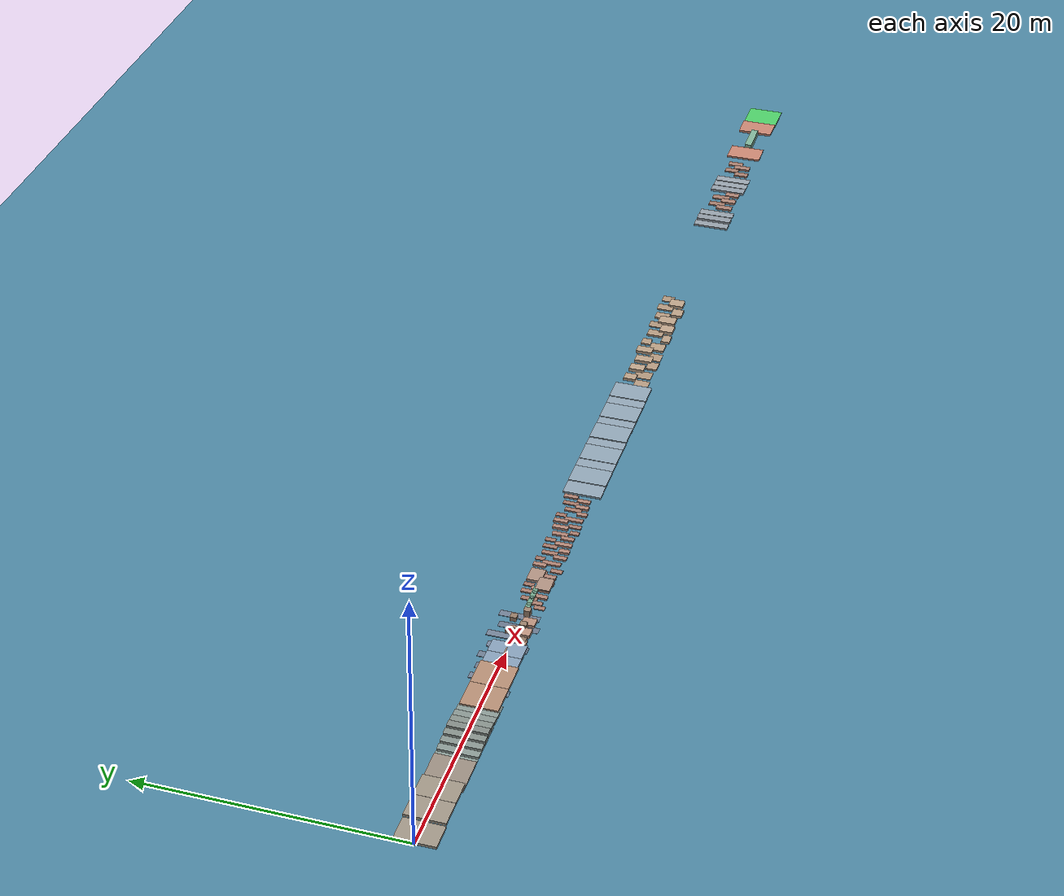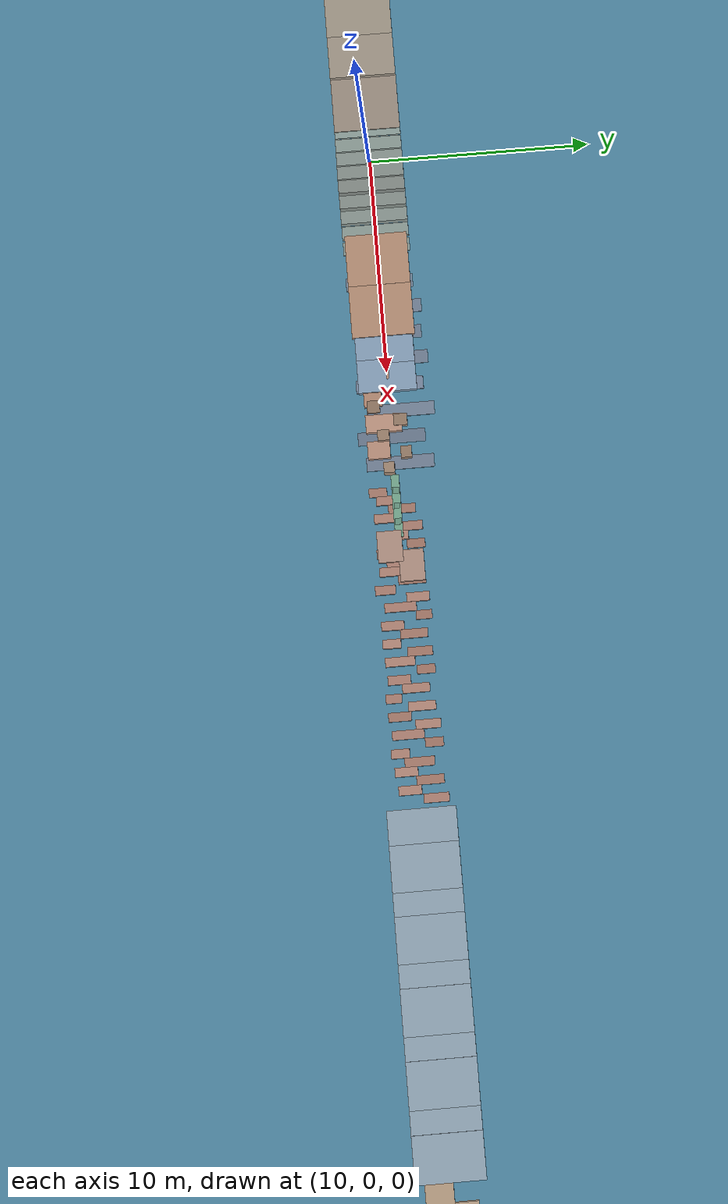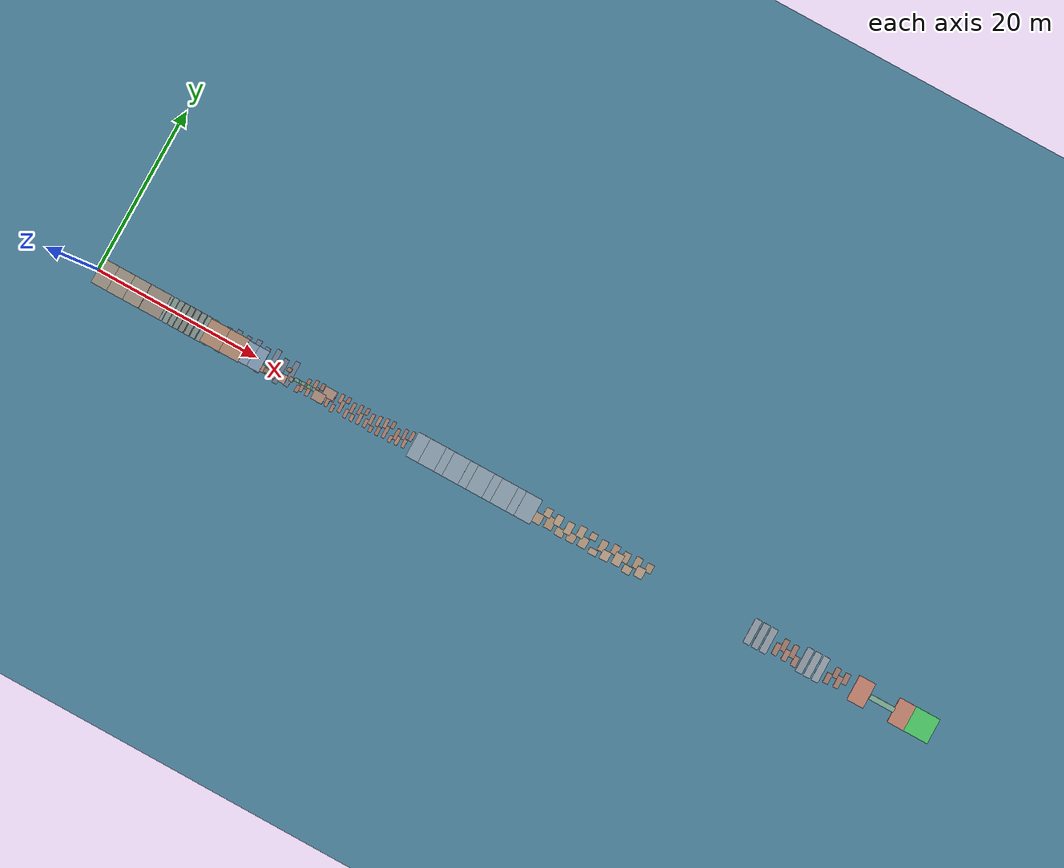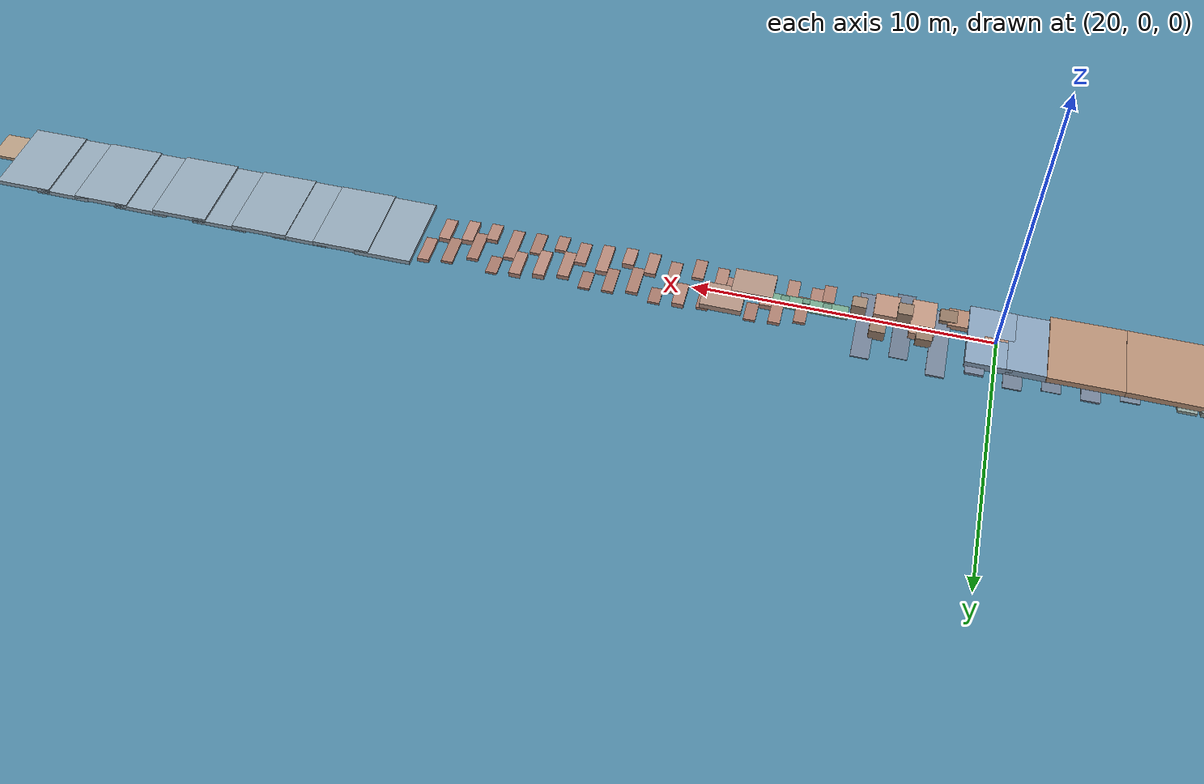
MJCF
<mujoco model="bx scene">

  <statistic center="0 0 0.6" extent="1.3"/>

  <visual>
    <headlight diffuse="0.5 0.5 0.5" ambient="0.2 0.2 0.2" specular="0.9 0.9 0.9"/>
    <rgba haze="0.15 0.25 0.35 1"/>
    <global azimuth="200" elevation="-20"/>
  </visual>

  <asset>
    <texture type="skybox" builtin="flat" rgb1="0.3 0.5 0.7" rgb2="0 0 0" width="512" height="3072"/>
    <texture type="2d" name="groundplane" builtin="checker" mark="edge" rgb1="0.3 0.52 0.63" rgb2="0.3 0.52 0.63" markrgb="1 1 1" width="300" height="300"/>
    <material name="groundplane" texture="groundplane" texuniform="true" texrepeat="5 5" reflectance="0.2"/>

    <texture name="texplane" type="2d" builtin="checker" rgb1=".2 .3 .4" rgb2=".1 0.15 0.2"
        width="512" height="512" mark="cross" markrgb=".8 .8 .8"/>
    <texture name="texplane2" type="2d" builtin="checker" rgb1="1 0.3137 0.1843" rgb2="0.0 0.30196 0.38039"
        width="512" height="512" mark="cross" markrgb=".8 .8 .8"/>
    <material name="matplane" reflectance="0." texture="texplane" texrepeat="1 1" texuniform="true"/>
    <material name="matplane2" reflectance="0.1" texture="texplane2" texrepeat="1 1" texuniform="true"/>
    <hfield name='hf0' nrow='200' ncol='200' size="10 5 0.2 .1"/>
  </asset>

  <worldbody>
    <light pos="1 0 3.5" dir="0 0 -1" directional="true"/>
    <geom name="floor" size="0 0 0.05" type="plane" material="groundplane" group="0"/>

    <!-- =============================================== 100米直线闯关地形 =============================================== -->
    <!-- 总长度 105米，宽 3米，包含: 斜面/台阶/凹凸/崎岖/曲面/杂乱地面 -->

    <!-- 第1段(0-8m): 初始斜面区域 -->
    <geom name="sec1_ramp_up_1" pos="1.0 0 0.10" type="box" size="1.0 1.5 0.10" euler="0 -0.25 0" rgba="0.62 0.58 0.52 1" friction="1.0 0.05 0.01"/>
    <geom name="sec1_ramp_up_2" pos="3.0 0 0.35" type="box" size="1.0 1.5 0.10" euler="0 -0.25 0" rgba="0.62 0.58 0.52 1" friction="1.0 0.05 0.01"/>
    <geom name="sec1_ramp_down"  pos="5.0 0 0.35" type="box" size="1.0 1.5 0.10" euler="0 0.25 0"  rgba="0.62 0.58 0.52 1" friction="1.0 0.05 0.01"/>
    <geom name="sec1_flat"       pos="7.0 0 0.08" type="box" size="1.5 1.5 0.08" rgba="0.60 0.55 0.50 1"/>

    <!-- 第2段(8-16m): 台阶上升区 -->
    <geom name="sec2_step_1" pos="8.5 0 0.05" type="box" size="0.3 1.5 0.05" rgba="0.55 0.62 0.60 1"/>
    <geom name="sec2_step_2" pos="9.2 0 0.10" type="box" size="0.3 1.5 0.10" rgba="0.54 0.60 0.58 1"/>
    <geom name="sec2_step_3" pos="9.9 0 0.15" type="box" size="0.3 1.5 0.15" rgba="0.53 0.58 0.56 1"/>
    <geom name="sec2_step_4" pos="10.6 0 0.20" type="box" size="0.3 1.5 0.20" rgba="0.52 0.56 0.54 1"/>
    <geom name="sec2_step_5" pos="11.3 0 0.25" type="box" size="0.3 1.5 0.25" rgba="0.51 0.54 0.52 1"/>
    <geom name="sec2_step_6" pos="12.0 0 0.20" type="box" size="0.3 1.5 0.20" rgba="0.52 0.56 0.54 1"/>
    <geom name="sec2_step_7" pos="12.7 0 0.15" type="box" size="0.3 1.5 0.15" rgba="0.53 0.58 0.56 1"/>
    <geom name="sec2_step_8" pos="13.4 0 0.10" type="box" size="0.3 1.5 0.10" rgba="0.54 0.60 0.58 1"/>
    <geom name="sec2_step_9" pos="14.1 0 0.05" type="box" size="0.3 1.5 0.05" rgba="0.55 0.62 0.60 1"/>

    <!-- 第3段(16-25m): 凹凸不平地面 -->
    <geom name="sec3_bump_1" pos="15.2 -0.6 0.08" type="box" size="0.4 0.5 0.08" rgba="0.68 0.52 0.45 1"/>
    <geom name="sec3_dip_1"  pos="15.8  0.0 0.02" type="box" size="0.3 1.5 0.02" rgba="0.45 0.52 0.60 1"/>
    <geom name="sec3_bump_2" pos="16.4 -0.5 0.10" type="box" size="0.4 0.6 0.10" rgba="0.70 0.54 0.46 1"/>
    <geom name="sec3_dip_2"  pos="17.0  0.3 0.03" type="box" size="0.3 1.5 0.03" rgba="0.44 0.50 0.58 1"/>
    <geom name="sec3_bump_3" pos="17.6 -0.4 0.12" type="box" size="0.4 0.7 0.12" rgba="0.72 0.56 0.48 1"/>
    <geom name="sec3_dip_3"  pos="18.2  0.2 0.01" type="box" size="0.3 1.5 0.01" rgba="0.42 0.48 0.56 1"/>
    <geom name="sec3_bump_4" pos="18.8 -0.6 0.11" type="box" size="0.4 0.5 0.11" rgba="0.71 0.55 0.47 1"/>
    <geom name="sec3_dip_4"  pos="19.4  0.4 0.02" type="box" size="0.3 1.5 0.02" rgba="0.43 0.49 0.57 1"/>
    <geom name="sec3_bump_5" pos="20.0 -0.5 0.13" type="box" size="0.4 0.6 0.13" rgba="0.73 0.57 0.49 1"/>
    <geom name="sec3_dip_5"  pos="20.6  0.1 0.04" type="box" size="0.3 1.5 0.04" rgba="0.46 0.52 0.61 1"/>
    <geom name="sec3_bump_6" pos="21.2 -0.7 0.09" type="box" size="0.4 0.4 0.09" rgba="0.69 0.53 0.44 1"/>
    <geom name="sec3_dip_6"  pos="21.8  0.5 0.03" type="box" size="0.3 1.5 0.03" rgba="0.45 0.51 0.59 1"/>
    <geom name="sec3_bump_7" pos="22.4 -0.3 0.14" type="box" size="0.4 0.8 0.14" rgba="0.74 0.58 0.50 1"/>
    <geom name="sec3_dip_7"  pos="23.0  0.0 0.01" type="box" size="0.3 1.5 0.01" rgba="0.41 0.47 0.55 1"/>
    <geom name="sec3_bump_8" pos="23.6 -0.6 0.12" type="box" size="0.4 0.5 0.12" rgba="0.72 0.56 0.48 1"/>
    <geom name="sec3_dip_8"  pos="24.2  0.3 0.02" type="box" size="0.3 1.5 0.02" rgba="0.44 0.50 0.58 1"/>

    <!-- 第4段(25-40m): 崎岖路面(密集小凸块) -->
    <geom name="sec4_rough_1"  pos="25.5 -0.8 0.04" type="box" size="0.2 0.4 0.04" rgba="0.65 0.48 0.42 1"/>
    <geom name="sec4_rough_2"  pos="25.9 -0.4 0.07" type="box" size="0.2 0.5 0.07" rgba="0.67 0.50 0.44 1"/>
    <geom name="sec4_rough_3"  pos="26.3  0.2 0.05" type="box" size="0.2 0.6 0.05" rgba="0.64 0.47 0.41 1"/>
    <geom name="sec4_rough_4"  pos="26.7 -0.6 0.08" type="box" size="0.2 0.45 0.08" rgba="0.68 0.51 0.45 1"/>
    <geom name="sec4_rough_5"  pos="27.1  0.5 0.06" type="box" size="0.2 0.55 0.06" rgba="0.66 0.49 0.43 1"/>
    <geom name="sec4_rough_6"  pos="27.5 -0.3 0.09" type="box" size="0.2 0.7 0.09" rgba="0.69 0.52 0.46 1"/>
    <geom name="sec4_rough_7"  pos="27.9  0.7 0.04" type="box" size="0.2 0.4 0.04" rgba="0.63 0.46 0.40 1"/>
    <geom name="sec4_rough_8"  pos="28.3 -0.7 0.10" type="box" size="0.2 0.35 0.10" rgba="0.70 0.53 0.47 1"/>
    <geom name="sec4_rough_9"  pos="28.7  0.0 0.07" type="box" size="0.2 0.65 0.07" rgba="0.67 0.50 0.44 1"/>
    <geom name="sec4_rough_10" pos="29.1 -0.5 0.08" type="box" size="0.2 0.5 0.08" rgba="0.68 0.51 0.45 1"/>
    <geom name="sec4_rough_11" pos="29.5  0.4 0.05" type="box" size="0.2 0.6 0.05" rgba="0.64 0.47 0.41 1"/>
    <geom name="sec4_rough_12" pos="29.9 -0.8 0.06" type="box" size="0.2 0.45 0.06" rgba="0.66 0.49 0.43 1"/>
    <geom name="sec4_rough_13" pos="30.3  0.6 0.09" type="box" size="0.2 0.5 0.09" rgba="0.69 0.52 0.46 1"/>
    <geom name="sec4_rough_14" pos="30.7 -0.2 0.07" type="box" size="0.2 0.7 0.07" rgba="0.67 0.50 0.44 1"/>
    <geom name="sec4_rough_15" pos="31.1  0.8 0.04" type="box" size="0.2 0.35 0.04" rgba="0.63 0.46 0.40 1"/>
    <geom name="sec4_rough_16" pos="31.5 -0.6 0.08" type="box" size="0.2 0.5 0.08" rgba="0.68 0.51 0.45 1"/>
    <geom name="sec4_rough_17" pos="31.9  0.3 0.06" type="box" size="0.2 0.6 0.06" rgba="0.65 0.48 0.42 1"/>
    <geom name="sec4_rough_18" pos="32.3 -0.7 0.10" type="box" size="0.2 0.4 0.10" rgba="0.70 0.53 0.47 1"/>
    <geom name="sec4_rough_19" pos="32.7  0.5 0.05" type="box" size="0.2 0.55 0.05" rgba="0.64 0.47 0.41 1"/>
    <geom name="sec4_rough_20" pos="33.1 -0.4 0.09" type="box" size="0.2 0.65 0.09" rgba="0.69 0.52 0.46 1"/>
    <geom name="sec4_rough_21" pos="33.5  0.7 0.04" type="box" size="0.2 0.4 0.04" rgba="0.63 0.46 0.40 1"/>
    <geom name="sec4_rough_22" pos="33.9 -0.5 0.07" type="box" size="0.2 0.5 0.07" rgba="0.67 0.50 0.44 1"/>
    <geom name="sec4_rough_23" pos="34.3  0.2 0.08" type="box" size="0.2 0.6 0.08" rgba="0.68 0.51 0.45 1"/>
    <geom name="sec4_rough_24" pos="34.7 -0.8 0.06" type="box" size="0.2 0.35 0.06" rgba="0.66 0.49 0.43 1"/>
    <geom name="sec4_rough_25" pos="35.1  0.4 0.10" type="box" size="0.2 0.6 0.10" rgba="0.70 0.53 0.47 1"/>
    <geom name="sec4_rough_26" pos="35.5 -0.6 0.05" type="box" size="0.2 0.5 0.05" rgba="0.64 0.47 0.41 1"/>
    <geom name="sec4_rough_27" pos="35.9  0.6 0.09" type="box" size="0.2 0.55 0.09" rgba="0.69 0.52 0.46 1"/>
    <geom name="sec4_rough_28" pos="36.3 -0.3 0.07" type="box" size="0.2 0.7 0.07" rgba="0.67 0.50 0.44 1"/>
    <geom name="sec4_rough_29" pos="36.7  0.8 0.04" type="box" size="0.2 0.4 0.04" rgba="0.63 0.46 0.40 1"/>
    <geom name="sec4_rough_30" pos="37.1 -0.7 0.08" type="box" size="0.2 0.4 0.08" rgba="0.68 0.51 0.45 1"/>
    <geom name="sec4_rough_31" pos="37.5  0.1 0.06" type="box" size="0.2 0.65 0.06" rgba="0.65 0.48 0.42 1"/>
    <geom name="sec4_rough_32" pos="37.9 -0.5 0.10" type="box" size="0.2 0.5 0.10" rgba="0.70 0.53 0.47 1"/>
    <geom name="sec4_rough_33" pos="38.3  0.5 0.05" type="box" size="0.2 0.6 0.05" rgba="0.64 0.47 0.41 1"/>
    <geom name="sec4_rough_34" pos="38.7 -0.4 0.09" type="box" size="0.2 0.5 0.09" rgba="0.69 0.52 0.46 1"/>
    <geom name="sec4_rough_35" pos="39.1  0.7 0.07" type="box" size="0.2 0.55 0.07" rgba="0.67 0.50 0.44 1"/>

    <!-- 第5段(40-55m): 曲面波形地面 -->
    <geom name="sec5_curve_1"  pos="40.5 0 0.08" type="box" size="1.0 1.5 0.08" euler="0 -0.15 0" rgba="0.56 0.64 0.70 1"/>
    <geom name="sec5_curve_2"  pos="42.0 0 0.14" type="box" size="1.0 1.5 0.08" euler="0 0.15 0"  rgba="0.56 0.64 0.70 1"/>
    <geom name="sec5_curve_3"  pos="43.5 0 0.12" type="box" size="1.0 1.5 0.08" euler="0 -0.12 0" rgba="0.56 0.64 0.70 1"/>
    <geom name="sec5_curve_4"  pos="45.0 0 0.16" type="box" size="1.0 1.5 0.08" euler="0 0.12 0"  rgba="0.56 0.64 0.70 1"/>
    <geom name="sec5_curve_5"  pos="46.5 0 0.10" type="box" size="1.0 1.5 0.08" euler="0 -0.10 0" rgba="0.56 0.64 0.70 1"/>
    <geom name="sec5_curve_6"  pos="48.0 0 0.18" type="box" size="1.0 1.5 0.08" euler="0 0.10 0"  rgba="0.56 0.64 0.70 1"/>
    <geom name="sec5_curve_7"  pos="49.5 0 0.09" type="box" size="1.0 1.5 0.08" euler="0 -0.08 0" rgba="0.56 0.64 0.70 1"/>
    <geom name="sec5_curve_8"  pos="51.0 0 0.15" type="box" size="1.0 1.5 0.08" euler="0 0.08 0"  rgba="0.56 0.64 0.70 1"/>
    <geom name="sec5_curve_9"  pos="52.5 0 0.11" type="box" size="1.0 1.5 0.08" euler="0 -0.06 0" rgba="0.56 0.64 0.70 1"/>
    <geom name="sec5_curve_10" pos="54.0 0 0.17" type="box" size="1.0 1.5 0.08" euler="0 0.06 0"  rgba="0.56 0.64 0.70 1"/>

    <!-- 第6段(55-70m): 杂乱地面(混合高低错杂) -->
    <geom name="sec6_chaos_1"  pos="55.5 -0.5 0.06" type="box" size="0.5 0.6 0.06" rgba="0.70 0.60 0.50 1"/>
    <geom name="sec6_chaos_2"  pos="56.2  0.6 0.12" type="box" size="0.4 0.5 0.12" rgba="0.72 0.62 0.52 1"/>
    <geom name="sec6_chaos_3"  pos="56.9 -0.3 0.03" type="box" size="0.5 0.7 0.03" rgba="0.68 0.58 0.48 1"/>
    <geom name="sec6_chaos_4"  pos="57.6  0.4 0.15" type="box" size="0.4 0.6 0.15" rgba="0.74 0.64 0.54 1"/>
    <geom name="sec6_chaos_5"  pos="58.3 -0.7 0.08" type="box" size="0.5 0.45 0.08" rgba="0.70 0.60 0.50 1"/>
    <geom name="sec6_chaos_6"  pos="59.0  0.2 0.14" type="box" size="0.4 0.7 0.14" rgba="0.73 0.63 0.53 1"/>
    <geom name="sec6_chaos_7"  pos="59.7 -0.6 0.04" type="box" size="0.5 0.5 0.04" rgba="0.69 0.59 0.49 1"/>
    <geom name="sec6_chaos_8"  pos="60.4  0.5 0.13" type="box" size="0.4 0.65 0.13" rgba="0.72 0.62 0.52 1"/>
    <geom name="sec6_chaos_9"  pos="61.1 -0.4 0.10" type="box" size="0.5 0.6 0.10" rgba="0.71 0.61 0.51 1"/>
    <geom name="sec6_chaos_10" pos="61.8  0.7 0.07" type="box" size="0.4 0.4 0.07" rgba="0.70 0.60 0.50 1"/>
    <geom name="sec6_chaos_11" pos="62.5 -0.8 0.11" type="box" size="0.5 0.35 0.11" rgba="0.72 0.62 0.52 1"/>
    <geom name="sec6_chaos_12" pos="63.2  0.3 0.09" type="box" size="0.4 0.65 0.09" rgba="0.70 0.60 0.50 1"/>
    <geom name="sec6_chaos_13" pos="63.9 -0.5 0.16" type="box" size="0.5 0.55 0.16" rgba="0.74 0.64 0.54 1"/>
    <geom name="sec6_chaos_14" pos="64.6  0.6 0.05" type="box" size="0.4 0.55 0.05" rgba="0.68 0.58 0.48 1"/>
    <geom name="sec6_chaos_15" pos="65.3 -0.2 0.13" type="box" size="0.5 0.7 0.13" rgba="0.73 0.63 0.53 1"/>
    <geom name="sec6_chaos_16" pos="66.0  0.4 0.08" type="box" size="0.4 0.6 0.08" rgba="0.70 0.60 0.50 1"/>
    <geom name="sec6_chaos_17" pos="66.7 -0.7 0.12" type="box" size="0.5 0.45 0.12" rgba="0.72 0.62 0.52 1"/>
    <geom name="sec6_chaos_18" pos="67.4  0.5 0.06" type="box" size="0.4 0.65 0.06" rgba="0.69 0.59 0.49 1"/>
    <geom name="sec6_chaos_19" pos="68.1 -0.3 0.14" type="box" size="0.5 0.6 0.14" rgba="0.73 0.63 0.53 1"/>
    <geom name="sec6_chaos_20" pos="68.8  0.6 0.04" type="box" size="0.4 0.5 0.04" rgba="0.68 0.58 0.48 1"/>

    <!-- 第7段(70-82m): 陡峭下坡 + 上升 -->

    <!-- 第8段(82-95m): 混合小地形(台阶+颠簸) -->
    <geom name="sec8_small_step_1" pos="82.0 0 0.08" type="box" size="0.4 1.5 0.08" rgba="0.58 0.62 0.66 1"/>
    <geom name="sec8_small_step_2" pos="83.0 0 0.12" type="box" size="0.4 1.5 0.12" rgba="0.56 0.60 0.64 1"/>
    <geom name="sec8_small_step_3" pos="84.0 0 0.08" type="box" size="0.4 1.5 0.08" rgba="0.58 0.62 0.66 1"/>
    <geom name="sec8_bump_field_1" pos="85.2 -0.4 0.09" type="box" size="0.3 0.7 0.09" rgba="0.66 0.50 0.44 1"/>
    <geom name="sec8_bump_field_2" pos="85.8  0.4 0.06" type="box" size="0.3 0.7 0.06" rgba="0.64 0.48 0.42 1"/>
    <geom name="sec8_bump_field_3" pos="86.4 -0.5 0.11" type="box" size="0.3 0.65 0.11" rgba="0.68 0.52 0.46 1"/>
    <geom name="sec8_bump_field_4" pos="87.0  0.3 0.07" type="box" size="0.3 0.75 0.07" rgba="0.65 0.49 0.43 1"/>
    <geom name="sec8_bump_field_5" pos="87.6 -0.6 0.10" type="box" size="0.3 0.6 0.10" rgba="0.67 0.51 0.45 1"/>
    <geom name="sec8_step_down_1" pos="88.5 0 0.10" type="box" size="0.4 1.5 0.10" rgba="0.57 0.61 0.65 1"/>
    <geom name="sec8_step_down_2" pos="89.5 0 0.06" type="box" size="0.4 1.5 0.06" rgba="0.59 0.63 0.67 1"/>
    <geom name="sec8_step_down_3" pos="90.5 0 0.04" type="box" size="0.4 1.5 0.04" rgba="0.60 0.64 0.68 1"/>
    <geom name="sec8_rough_end_1" pos="91.6 -0.5 0.08" type="box" size="0.3 0.6 0.08" rgba="0.65 0.49 0.43 1"/>
    <geom name="sec8_rough_end_2" pos="92.2  0.5 0.06" type="box" size="0.3 0.6 0.06" rgba="0.64 0.48 0.42 1"/>
    <geom name="sec8_rough_end_3" pos="92.8 -0.3 0.09" type="box" size="0.3 0.7 0.09" rgba="0.66 0.50 0.44 1"/>
    <geom name="sec8_rough_end_4" pos="93.4  0.4 0.07" type="box" size="0.3 0.65 0.07" rgba="0.65 0.49 0.43 1"/>

    <!-- 第9段(95-105m): 最终挑战区 -->
    <geom name="sec9_final_ramp_up" pos="95.5 0 0.20" type="box" size="1.0 1.5 0.08" euler="0 -0.28 0" rgba="0.78 0.52 0.44 1" friction="1.0 0.05 0.01"/>
    <geom name="sec9_narrow_bridge" pos="98.0 0 0.30" type="box" size="1.5 0.30 0.3" rgba="0.50 0.70 0.60 1" friction="1.2 0.02 0.005"/>
    <geom name="sec9_final_down"    pos="100.5 0 0.25" type="box" size="1.0 1.5 0.10" euler="0 0.28 0"  rgba="0.78 0.52 0.44 1" friction="1.0 0.05 0.01"/>
    <geom name="sec9_finish_line"   pos="103.0 0 0.08" type="box" size="1.5 1.5 0.08" rgba="0.30 0.80 0.40 1"/>

    <!-- ===================== 上楼梯（数量翻倍）===================== -->

    <!-- ===================== 下楼梯（数量翻倍）===================== -->

    <!-- ===================== 上楼梯（数量翻倍）===================== -->

    <!-- ===================== 激进地形：主通道挑战（x:14~24, y:0） ===================== -->
    <!-- 陡上坡 + 陡下坡 -->
    <geom name="aggr_ramp_up"   pos="14.8 0.0 0.24" type="box" size="1.2 1.4 0.10" euler="0 -0.40 0" rgba="0.70 0.55 0.45 1" friction="1.0 0.05 0.01"/>
    <geom name="aggr_ramp_down" pos="17.2 0.0 0.24" type="box" size="1.2 1.4 0.10" euler="0 0.40 0"  rgba="0.70 0.55 0.45 1" friction="1.0 0.05 0.01"/>

    <!-- 横滚斜台（考验侧向稳定） -->
    <geom name="aggr_bank_left"  pos="18.9 0.0 0.14" type="box" size="0.75 1.3 0.12" euler="0.22 0 0"  rgba="0.52 0.62 0.72 1" friction="0.9 0.04 0.01"/>
    <geom name="aggr_bank_right" pos="20.2 0.0 0.14" type="box" size="0.75 1.3 0.12" euler="-0.22 0 0" rgba="0.52 0.62 0.72 1" friction="0.9 0.04 0.01"/>

    <!-- 离散跳石（高差+横向偏移） -->
    <geom name="aggr_step_1" pos="21.6 -0.70 0.10" type="box" size="0.28 0.28 0.10" rgba="0.56 0.46 0.38 1"/>
    <geom name="aggr_step_2" pos="22.3  0.45 0.16" type="box" size="0.26 0.30 0.16" rgba="0.58 0.48 0.40 1"/>
    <geom name="aggr_step_3" pos="23.0 -0.35 0.24" type="box" size="0.24 0.26 0.24" rgba="0.60 0.50 0.42 1"/>
    <geom name="aggr_step_4" pos="23.8  0.60 0.18" type="box" size="0.26 0.24 0.18" rgba="0.58 0.48 0.40 1"/>
    <geom name="aggr_step_5" pos="24.5 -0.20 0.28" type="box" size="0.24 0.24 0.28" rgba="0.62 0.52 0.44 1"/>

    <!-- 窄梁 + 梁上扰动块 -->
    <geom name="aggr_narrow_beam" pos="26.2 0.0 0.13" type="box" size="1.4 0.18 0.13" rgba="0.45 0.65 0.55 1" friction="1.1 0.02 0.005"/>
    <geom name="aggr_beam_bump_1" pos="25.5 0.00 0.20" type="box" size="0.14 0.14 0.07" rgba="0.40 0.58 0.50 1"/>
    <geom name="aggr_beam_bump_2" pos="26.2 0.00 0.23" type="box" size="0.12 0.12 0.10" rgba="0.40 0.58 0.50 1"/>
    <geom name="aggr_beam_bump_3" pos="26.9 0.00 0.20" type="box" size="0.14 0.14 0.07" rgba="0.40 0.58 0.50 1"/>

    <!-- 末端双斜面（复合姿态变化） -->
    <geom name="aggr_exit_tilt_1" pos="28.0 -0.45 0.18" type="box" size="0.70 0.55 0.10" euler="0.16 -0.25 0" rgba="0.68 0.56 0.50 1"/>
    <geom name="aggr_exit_tilt_2" pos="28.9  0.45 0.18" type="box" size="0.70 0.55 0.10" euler="-0.16 -0.25 0" rgba="0.68 0.56 0.50 1"/>
  </worldbody>
</mujoco>
